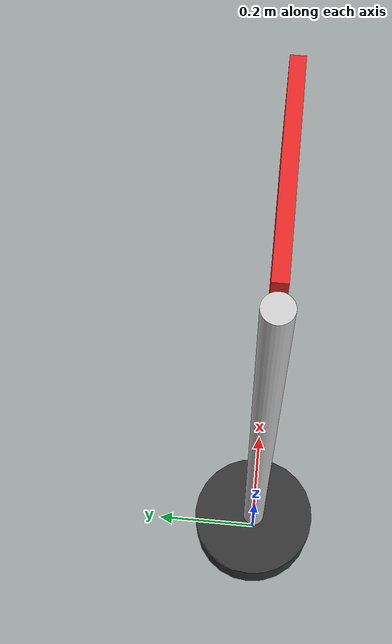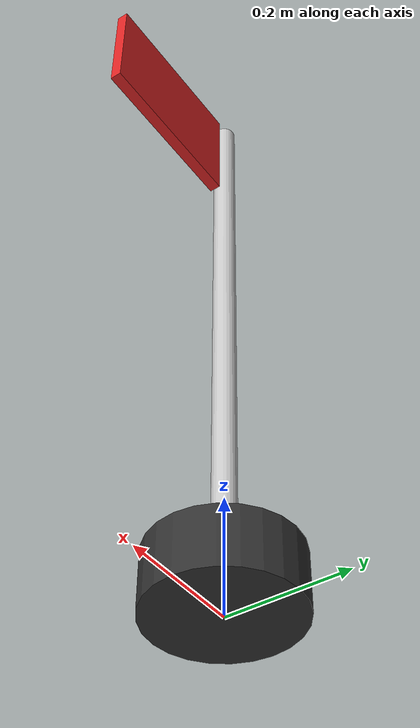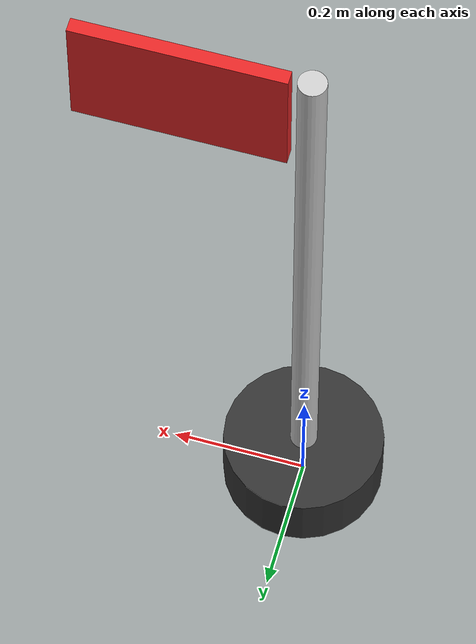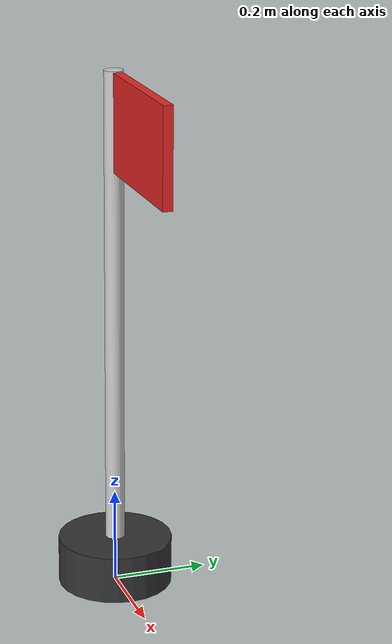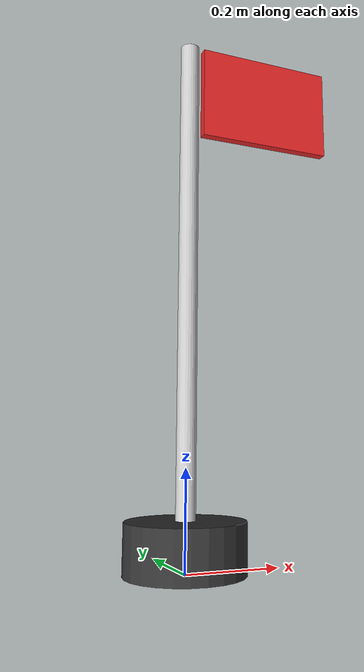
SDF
<?xml version="1.0"?>
<sdf version="1.9">
  <model name="follow_flag">
    <static>true</static>

    <plugin
      filename="gz-sim-pose-publisher-system"
      name="gz::sim::systems::PosePublisher">
      <publish_model_pose>true</publish_model_pose>
      <publish_link_pose>false</publish_link_pose>
      <use_pose_vector_msg>false</use_pose_vector_msg>
      <static_publisher>false</static_publisher>
      <update_frequency>10</update_frequency>
    </plugin>

    <link name="flag_base">
      <collision name="base_collision">
        <pose>0 0 0.05 0 0 0</pose>
        <geometry>
          <cylinder>
            <radius>0.12</radius>
            <length>0.10</length>
          </cylinder>
        </geometry>
      </collision>
      <visual name="base_visual">
        <pose>0 0 0.05 0 0 0</pose>
        <geometry>
          <cylinder>
            <radius>0.12</radius>
            <length>0.10</length>
          </cylinder>
        </geometry>
        <material>
          <ambient>0.15 0.15 0.15 1</ambient>
          <diffuse>0.20 0.20 0.20 1</diffuse>
          <specular>0.02 0.02 0.02 1</specular>
        </material>
      </visual>

      <collision name="pole_collision">
        <pose>0 0 0.60 0 0 0</pose>
        <geometry>
          <cylinder>
            <radius>0.02</radius>
            <length>1.00</length>
          </cylinder>
        </geometry>
      </collision>
      <visual name="pole_visual">
        <pose>0 0 0.60 0 0 0</pose>
        <geometry>
          <cylinder>
            <radius>0.02</radius>
            <length>1.00</length>
          </cylinder>
        </geometry>
        <material>
          <ambient>0.70 0.70 0.70 1</ambient>
          <diffuse>0.80 0.80 0.80 1</diffuse>
          <specular>0.05 0.05 0.05 1</specular>
        </material>
      </visual>

      <visual name="flag_visual">
        <pose>0.18 0 1.00 0 0 0</pose>
        <geometry>
          <box>
            <size>0.30 0.02 0.20</size>
          </box>
        </geometry>
        <material>
          <ambient>0.80 0.10 0.10 1</ambient>
          <diffuse>0.90 0.15 0.15 1</diffuse>
          <specular>0.08 0.08 0.08 1</specular>
        </material>
      </visual>
    </link>
  </model>
</sdf>
